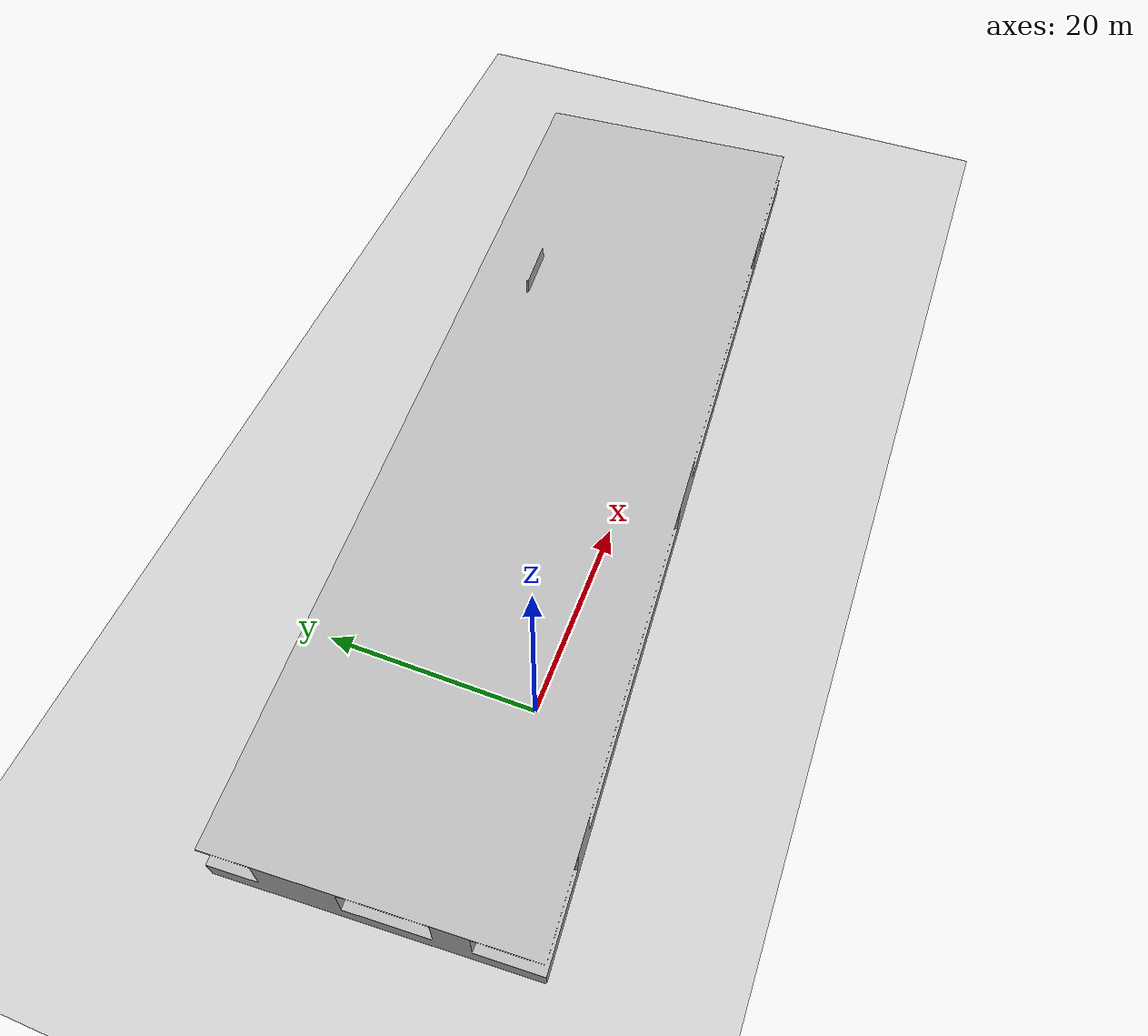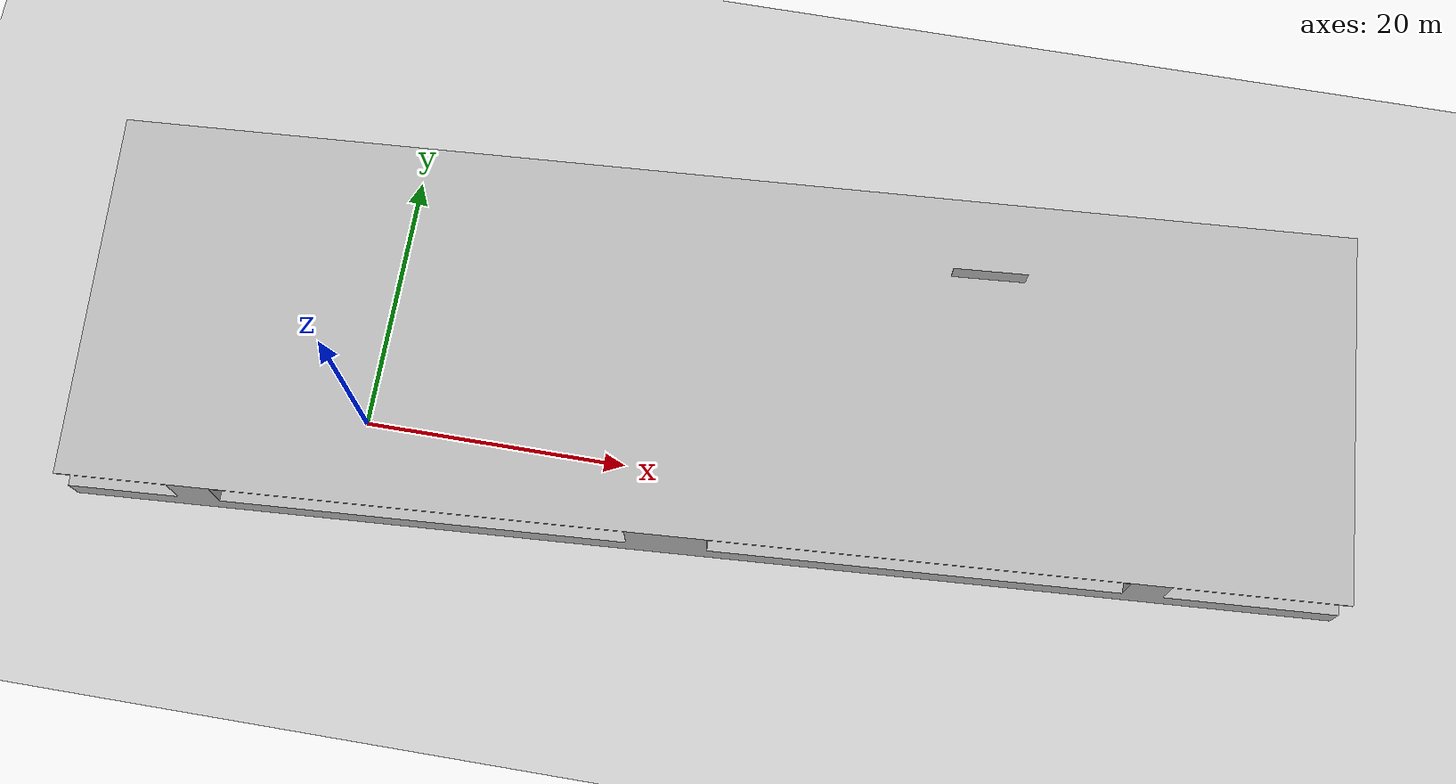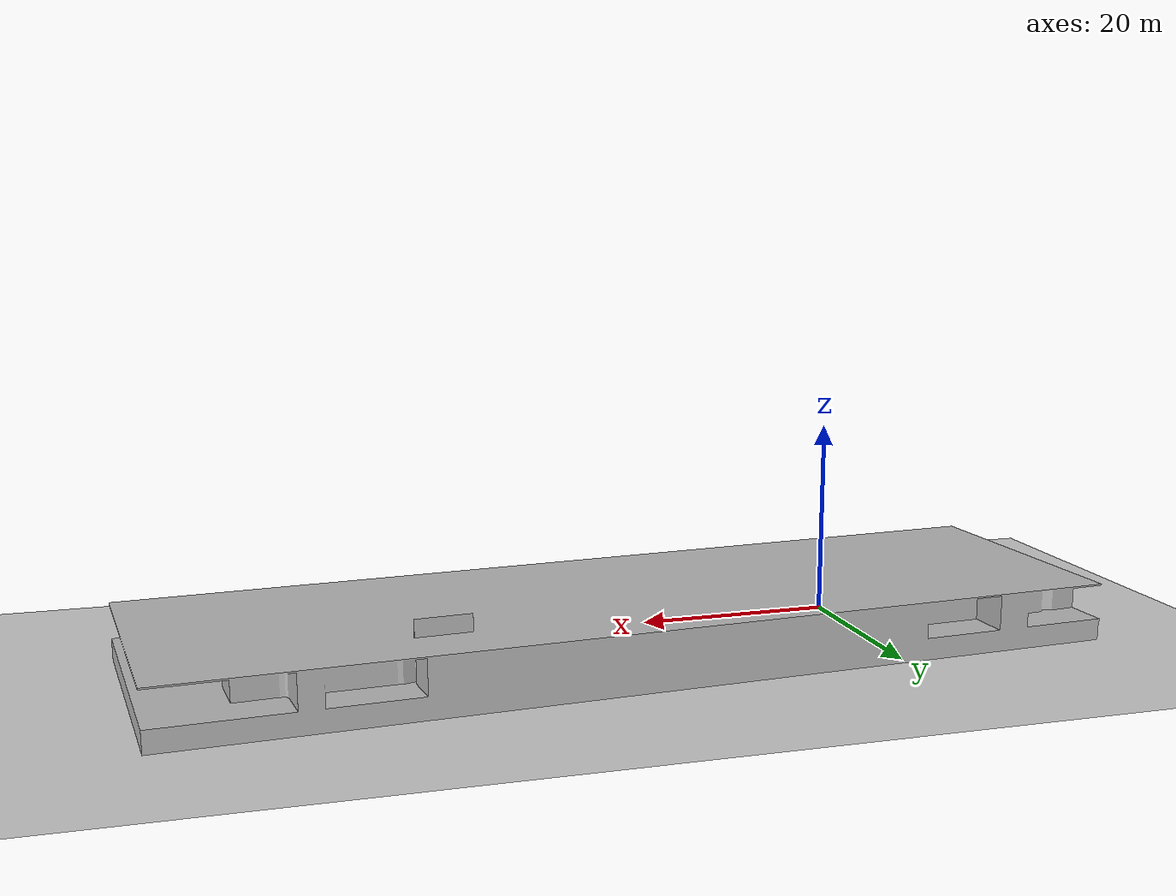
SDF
<sdf version="1.7">
 <world name="default">
  <light name="sun" type="directional">
   <pose>0 0 10 0 -0 0</pose>
   <diffuse>0.8 0.8 0.8 1</diffuse>
   <specular>0.2 0.2 0.2 1</specular>
   <attenuation>
    <range>1000</range>
    <constant>0.9</constant>
    <linear>0.01</linear>
    <quadratic>0.001</quadratic>
   </attenuation>
   <direction>-0.5 0.1 -0.9</direction>
   <spot><inner_angle>0</inner_angle><outer_angle>0</outer_angle><falloff>0</falloff></spot>
  </light>
  <model name="ground_plane">
   <static>1</static>
   <link name="link">
    <collision name="collision">
     <geometry><plane><normal>0 0 1</normal><size>100 100</size></plane></geometry>
     <surface>
      <contact><collide_bitmask>65535</collide_bitmask></contact>
      <friction><ode><mu>100</mu><mu2>100</mu2></ode></friction>
     </surface>
    </collision>
    <visual name="visual">
     <cast_shadows>0</cast_shadows>
     <geometry><plane><normal>0 0 1</normal><size>100 100</size></plane></geometry>
     <material>
      <script><uri>file://media/materials/scripts/gazebo.material</uri><name>Gazebo/Grey</name></script>
     </material>
    </visual>
   </link>
  </model>
  <gravity>0 0 -9.8</gravity>
  <magnetic_field>6e-06 2.3e-05 -4.2e-05</magnetic_field>
  <atmosphere type="adiabatic"/>
  <physics type="ode"><max_step_size>0.001</max_step_size></physics>
  <scene><ambient>0.4 0.4 0.4 1</ambient><background>0.7 0.7 0.7 1</background><shadows>1</shadows></scene>
  <spherical_coordinates>
   <surface_model>EARTH_WGS84</surface_model>
   <latitude_deg>0</latitude_deg>
   <longitude_deg>0</longitude_deg>
   <elevation>0</elevation>
   <heading_deg>0</heading_deg>
  </spherical_coordinates>
  <model name="floor">
   <link name="base_link">
    <inertial>
     <pose>25.8 5 -93.89 0 -0.025663 -0.007</pose>
     <mass>8.0192e+06</mass>
     <inertia><ixx>1</ixx><ixy>0</ixy><ixz>0</ixz><iyy>1</iyy><iyz>0</iyz><izz>1</izz></inertia>
    </inertial>
    <collision name="base_link_collision">
     <pose>25.8 5 -93.89 0 -0.025663 -0.007</pose>
     <geometry><mesh><scale>1 1 1</scale><uri>file://media/materials/scripts/base_link.STL</uri></mesh></geometry>
    </collision>
    <visual name="base_link_visual">
     <pose>25.8 5 -93.89 0 -0.025663 -0.007</pose>
     <geometry>
      <mesh><scale>1 1 1</scale><uri>file://media/materials/scripts/gazebo.material</uri></mesh>
     </geometry>
     <material>
      <script><name>ambient</name><uri>file://media/materials/scripts/gazebo.material</uri></script>
     </material>
    </visual>
    <wireframe>1</wireframe>
   </link>
   <static>1</static>
   <pose>0 0.4 0 0 -0 0</pose>
  </model>
  <light name="user_spot_light_0" type="spot">
   <pose>2.26878 0.494969 1 0 -0 0</pose>
   <diffuse>0.5 0.5 0.5 1</diffuse>
   <specular>0.1 0.1 0.1 1</specular>
   <direction>0 0 -1</direction>
   <attenuation>
    <range>20</range>
    <constant>0.5</constant>
    <linear>0.01</linear>
    <quadratic>0.001</quadratic>
   </attenuation>
   <cast_shadows>0</cast_shadows>
   <spot><inner_angle>0.6</inner_angle><outer_angle>1</outer_angle><falloff>1</falloff></spot>
  </light>
  <light name="user_spot_light_1" type="spot">
   <pose>6.06966 0.952853 1 0 -0 0</pose>
   <diffuse>0.5 0.5 0.5 1</diffuse>
   <specular>0.1 0.1 0.1 1</specular>
   <direction>0 0 -1</direction>
   <attenuation>
    <range>20</range>
    <constant>0.5</constant>
    <linear>0.01</linear>
    <quadratic>0.001</quadratic>
   </attenuation>
   <cast_shadows>0</cast_shadows>
   <spot><inner_angle>0.6</inner_angle><outer_angle>1</outer_angle><falloff>1</falloff></spot>
  </light>
  <light name="user_spot_light_2" type="spot">
   <pose>9.92737 0.896393 1 0 -0 0</pose>
   <diffuse>0.5 0.5 0.5 1</diffuse>
   <specular>0.1 0.1 0.1 1</specular>
   <direction>0 0 -1</direction>
   <attenuation>
    <range>20</range>
    <constant>0.5</constant>
    <linear>0.01</linear>
    <quadratic>0.001</quadratic>
   </attenuation>
   <cast_shadows>0</cast_shadows>
   <spot><inner_angle>0.6</inner_angle><outer_angle>1</outer_angle><falloff>1</falloff></spot>
  </light>
  <light name="user_spot_light_3" type="spot">
   <pose>17.5225 1.61371 1 0 -0 0</pose>
   <diffuse>0.5 0.5 0.5 1</diffuse>
   <specular>0.1 0.1 0.1 1</specular>
   <direction>0 0 -1</direction>
   <attenuation>
    <range>20</range>
    <constant>0.5</constant>
    <linear>0.01</linear>
    <quadratic>0.001</quadratic>
   </attenuation>
   <cast_shadows>0</cast_shadows>
   <spot><inner_angle>0.6</inner_angle><outer_angle>1</outer_angle><falloff>1</falloff></spot>
  </light>
  <light name="user_spot_light_4" type="spot">
   <pose>23.5397 1.94506 1 0 -0 0</pose>
   <diffuse>0.5 0.5 0.5 1</diffuse>
   <specular>0.1 0.1 0.1 1</specular>
   <direction>0 0 -1</direction>
   <attenuation>
    <range>20</range>
    <constant>0.5</constant>
    <linear>0.01</linear>
    <quadratic>0.001</quadratic>
   </attenuation>
   <cast_shadows>0</cast_shadows>
   <spot><inner_angle>0.6</inner_angle><outer_angle>1</outer_angle><falloff>1</falloff></spot>
  </light>
  <light name="user_spot_light_5" type="spot">
   <pose>31.451 1.9377 1 0 -0 0</pose>
   <diffuse>0.5 0.5 0.5 1</diffuse>
   <specular>0.1 0.1 0.1 1</specular>
   <direction>0 0 -1</direction>
   <attenuation>
    <range>20</range>
    <constant>0.5</constant>
    <linear>0.01</linear>
    <quadratic>0.001</quadratic>
   </attenuation>
   <cast_shadows>0</cast_shadows>
   <spot><inner_angle>0.6</inner_angle><outer_angle>1</outer_angle><falloff>1</falloff></spot>
  </light>
  <light name="user_spot_light_6" type="spot">
   <pose>37.9476 2.36788 1 0 -0 0</pose>
   <diffuse>0.5 0.5 0.5 1</diffuse>
   <specular>0.1 0.1 0.1 1</specular>
   <direction>0 0 -1</direction>
   <attenuation>
    <range>20</range>
    <constant>0.5</constant>
    <linear>0.01</linear>
    <quadratic>0.001</quadratic>
   </attenuation>
   <cast_shadows>0</cast_shadows>
   <spot><inner_angle>0.6</inner_angle><outer_angle>1</outer_angle><falloff>1</falloff></spot>
  </light>
  <light name="user_spot_light_7" type="spot">
   <pose>48.6588 3.45051 1 0 -0 0</pose>
   <diffuse>0.5 0.5 0.5 1</diffuse>
   <specular>0.1 0.1 0.1 1</specular>
   <direction>0 0 -1</direction>
   <attenuation>
    <range>20</range>
    <constant>0.5</constant>
    <linear>0.01</linear>
    <quadratic>0.001</quadratic>
   </attenuation>
   <cast_shadows>0</cast_shadows>
   <spot><inner_angle>0.6</inner_angle><outer_angle>1</outer_angle><falloff>1</falloff></spot>
  </light>
  <light name="user_spot_light_8" type="spot">
   <pose>54.5924 4.088 1 0 -0 0</pose>
   <diffuse>0.5 0.5 0.5 1</diffuse>
   <specular>0.1 0.1 0.1 1</specular>
   <direction>0 0 -1</direction>
   <attenuation>
    <range>20</range>
    <constant>0.5</constant>
    <linear>0.01</linear>
    <quadratic>0.001</quadratic>
   </attenuation>
   <cast_shadows>0</cast_shadows>
   <spot><inner_angle>0.6</inner_angle><outer_angle>1</outer_angle><falloff>1</falloff></spot>
  </light>
  <light name="user_spot_light_9" type="spot">
   <pose>60.0735 4.51787 1 0 -0 0</pose>
   <diffuse>0.5 0.5 0.5 1</diffuse>
   <specular>0.1 0.1 0.1 1</specular>
   <direction>0 0 -1</direction>
   <attenuation>
    <range>20</range>
    <constant>0.5</constant>
    <linear>0.01</linear>
    <quadratic>0.001</quadratic>
   </attenuation>
   <cast_shadows>0</cast_shadows>
   <spot><inner_angle>0.6</inner_angle><outer_angle>1</outer_angle><falloff>1</falloff></spot>
  </light>
  <light name="user_spot_light_10" type="spot">
   <pose>59.8313 11.3533 1 0 -0 0</pose>
   <diffuse>0.5 0.5 0.5 1</diffuse>
   <specular>0.1 0.1 0.1 1</specular>
   <direction>0 0 -1</direction>
   <attenuation>
    <range>20</range>
    <constant>0.5</constant>
    <linear>0.01</linear>
    <quadratic>0.001</quadratic>
   </attenuation>
   <cast_shadows>0</cast_shadows>
   <spot><inner_angle>0.6</inner_angle><outer_angle>1</outer_angle><falloff>1</falloff></spot>
  </light>
  <light name="user_spot_light_11" type="spot">
   <pose>58.5562 17.7393 1 0 -0 0</pose>
   <diffuse>0.5 0.5 0.5 1</diffuse>
   <specular>0.1 0.1 0.1 1</specular>
   <direction>0 0 -1</direction>
   <attenuation>
    <range>20</range>
    <constant>0.5</constant>
    <linear>0.01</linear>
    <quadratic>0.001</quadratic>
   </attenuation>
   <cast_shadows>0</cast_shadows>
   <spot><inner_angle>0.6</inner_angle><outer_angle>1</outer_angle><falloff>1</falloff></spot>
  </light>
  <light name="user_spot_light_12" type="spot">
   <pose>56.2401 18.6749 1 0 -0 0</pose>
   <diffuse>0.5 0.5 0.5 1</diffuse>
   <specular>0.1 0.1 0.1 1</specular>
   <direction>0 0 -1</direction>
   <attenuation>
    <range>20</range>
    <constant>0.5</constant>
    <linear>0.01</linear>
    <quadratic>0.001</quadratic>
   </attenuation>
   <cast_shadows>0</cast_shadows>
   <spot><inner_angle>0.6</inner_angle><outer_angle>1</outer_angle><falloff>1</falloff></spot>
  </light>
  <light name="user_spot_light_13" type="spot">
   <pose>52.6684 18.8695 1 0 -0 0</pose>
   <diffuse>0.5 0.5 0.5 1</diffuse>
   <specular>0.1 0.1 0.1 1</specular>
   <direction>0 0 -1</direction>
   <attenuation>
    <range>20</range>
    <constant>0.5</constant>
    <linear>0.01</linear>
    <quadratic>0.001</quadratic>
   </attenuation>
   <cast_shadows>0</cast_shadows>
   <spot><inner_angle>0.6</inner_angle><outer_angle>1</outer_angle><falloff>1</falloff></spot>
  </light>
  <light name="user_spot_light_14" type="spot">
   <pose>48.7817 19.594 1 0 -0 0</pose>
   <diffuse>0.5 0.5 0.5 1</diffuse>
   <specular>0.1 0.1 0.1 1</specular>
   <direction>0 0 -1</direction>
   <attenuation>
    <range>20</range>
    <constant>0.5</constant>
    <linear>0.01</linear>
    <quadratic>0.001</quadratic>
   </attenuation>
   <cast_shadows>0</cast_shadows>
   <spot><inner_angle>0.6</inner_angle><outer_angle>1</outer_angle><falloff>1</falloff></spot>
  </light>
  <light name="user_spot_light_15" type="spot">
   <pose>42.2244 18.1594 1 0 -0 0</pose>
   <diffuse>0.5 0.5 0.5 1</diffuse>
   <specular>0.1 0.1 0.1 1</specular>
   <direction>0 0 -1</direction>
   <attenuation>
    <range>20</range>
    <constant>0.5</constant>
    <linear>0.01</linear>
    <quadratic>0.001</quadratic>
   </attenuation>
   <cast_shadows>0</cast_shadows>
   <spot><inner_angle>0.6</inner_angle><outer_angle>1</outer_angle><falloff>1</falloff></spot>
  </light>
  <light name="user_spot_light_16" type="spot">
   <pose>37.9117 17.1743 1 0 -0 0</pose>
   <diffuse>0.5 0.5 0.5 1</diffuse>
   <specular>0.1 0.1 0.1 1</specular>
   <direction>0 0 -1</direction>
   <attenuation>
    <range>20</range>
    <constant>0.5</constant>
    <linear>0.01</linear>
    <quadratic>0.001</quadratic>
   </attenuation>
   <cast_shadows>0</cast_shadows>
   <spot><inner_angle>0.6</inner_angle><outer_angle>1</outer_angle><falloff>1</falloff></spot>
  </light>
  <light name="user_spot_light_17" type="spot">
   <pose>42.9303 16.3431 1 0 -0 0</pose>
   <diffuse>0.5 0.5 0.5 1</diffuse>
   <specular>0.1 0.1 0.1 1</specular>
   <direction>0 0 -1</direction>
   <attenuation>
    <range>20</range>
    <constant>0.5</constant>
    <linear>0.01</linear>
    <quadratic>0.001</quadratic>
   </attenuation>
   <cast_shadows>0</cast_shadows>
   <spot><inner_angle>0.6</inner_angle><outer_angle>1</outer_angle><falloff>1</falloff></spot>
  </light>
  <light name="user_spot_light_18" type="spot">
   <pose>39.2625 16.1227 1 0 -0 0</pose>
   <diffuse>0.5 0.5 0.5 1</diffuse>
   <specular>0.1 0.1 0.1 1</specular>
   <direction>0 0 -1</direction>
   <attenuation>
    <range>20</range>
    <constant>0.5</constant>
    <linear>0.01</linear>
    <quadratic>0.001</quadratic>
   </attenuation>
   <cast_shadows>0</cast_shadows>
   <spot><inner_angle>0.6</inner_angle><outer_angle>1</outer_angle><falloff>1</falloff></spot>
  </light>
  <light name="user_spot_light_19" type="spot">
   <pose>34.2128 15.4342 1 0 -0 0</pose>
   <diffuse>0.5 0.5 0.5 1</diffuse>
   <specular>0.1 0.1 0.1 1</specular>
   <direction>0 0 -1</direction>
   <attenuation>
    <range>20</range>
    <constant>0.5</constant>
    <linear>0.01</linear>
    <quadratic>0.001</quadratic>
   </attenuation>
   <cast_shadows>0</cast_shadows>
   <spot><inner_angle>0.6</inner_angle><outer_angle>1</outer_angle><falloff>1</falloff></spot>
  </light>
  <light name="user_spot_light_20" type="spot">
   <pose>30.7959 13.9493 1 0 -0 0</pose>
   <diffuse>0.5 0.5 0.5 1</diffuse>
   <specular>0.1 0.1 0.1 1</specular>
   <direction>0 0 -1</direction>
   <attenuation>
    <range>20</range>
    <constant>0.5</constant>
    <linear>0.01</linear>
    <quadratic>0.001</quadratic>
   </attenuation>
   <cast_shadows>0</cast_shadows>
   <spot><inner_angle>0.6</inner_angle><outer_angle>1</outer_angle><falloff>1</falloff></spot>
  </light>
  <light name="user_spot_light_21" type="spot">
   <pose>27.3676 12.014 1 0 -0 0</pose>
   <diffuse>0.5 0.5 0.5 1</diffuse>
   <specular>0.1 0.1 0.1 1</specular>
   <direction>0 0 -1</direction>
   <attenuation>
    <range>20</range>
    <constant>0.5</constant>
    <linear>0.01</linear>
    <quadratic>0.001</quadratic>
   </attenuation>
   <cast_shadows>0</cast_shadows>
   <spot><inner_angle>0.6</inner_angle><outer_angle>1</outer_angle><falloff>1</falloff></spot>
  </light>
  <light name="user_spot_light_22" type="spot">
   <pose>24.7742 11.8127 1 0 -0 0</pose>
   <diffuse>0.5 0.5 0.5 1</diffuse>
   <specular>0.1 0.1 0.1 1</specular>
   <direction>0 0 -1</direction>
   <attenuation>
    <range>20</range>
    <constant>0.5</constant>
    <linear>0.01</linear>
    <quadratic>0.001</quadratic>
   </attenuation>
   <cast_shadows>0</cast_shadows>
   <spot><inner_angle>0.6</inner_angle><outer_angle>1</outer_angle><falloff>1</falloff></spot>
  </light>
  <light name="user_spot_light_23" type="spot">
   <pose>23.1304 10.1919 1 0 -0 0</pose>
   <diffuse>0.5 0.5 0.5 1</diffuse>
   <specular>0.1 0.1 0.1 1</specular>
   <direction>0 0 -1</direction>
   <attenuation>
    <range>20</range>
    <constant>0.5</constant>
    <linear>0.01</linear>
    <quadratic>0.001</quadratic>
   </attenuation>
   <cast_shadows>0</cast_shadows>
   <spot><inner_angle>0.6</inner_angle><outer_angle>1</outer_angle><falloff>1</falloff></spot>
  </light>
  <light name="user_spot_light_24" type="spot">
   <pose>25.7819 17.5585 1 0 -0 0</pose>
   <diffuse>0.5 0.5 0.5 1</diffuse>
   <specular>0.1 0.1 0.1 1</specular>
   <direction>0 0 -1</direction>
   <attenuation>
    <range>20</range>
    <constant>0.5</constant>
    <linear>0.01</linear>
    <quadratic>0.001</quadratic>
   </attenuation>
   <cast_shadows>0</cast_shadows>
   <spot><inner_angle>0.6</inner_angle><outer_angle>1</outer_angle><falloff>1</falloff></spot>
  </light>
  <light name="user_spot_light_25" type="spot">
   <pose>21.4658 10.8806 1 0 -0 0</pose>
   <diffuse>0.5 0.5 0.5 1</diffuse>
   <specular>0.1 0.1 0.1 1</specular>
   <direction>0 0 -1</direction>
   <attenuation>
    <range>20</range>
    <constant>0.5</constant>
    <linear>0.01</linear>
    <quadratic>0.001</quadratic>
   </attenuation>
   <cast_shadows>0</cast_shadows>
   <spot><inner_angle>0.6</inner_angle><outer_angle>1</outer_angle><falloff>1</falloff></spot>
  </light>
  <light name="user_spot_light_26" type="spot">
   <pose>15.4345 8.79324 1 0 -0 0</pose>
   <diffuse>0.5 0.5 0.5 1</diffuse>
   <specular>0.1 0.1 0.1 1</specular>
   <direction>0 0 -1</direction>
   <attenuation>
    <range>20</range>
    <constant>0.5</constant>
    <linear>0.01</linear>
    <quadratic>0.001</quadratic>
   </attenuation>
   <cast_shadows>0</cast_shadows>
   <spot><inner_angle>0.6</inner_angle><outer_angle>1</outer_angle><falloff>1</falloff></spot>
  </light>
  <light name="user_spot_light_27" type="spot">
   <pose>11.0861 9.77459 1 0 -0 0</pose>
   <diffuse>0.5 0.5 0.5 1</diffuse>
   <specular>0.1 0.1 0.1 1</specular>
   <direction>0 0 -1</direction>
   <attenuation>
    <range>20</range>
    <constant>0.5</constant>
    <linear>0.01</linear>
    <quadratic>0.001</quadratic>
   </attenuation>
   <cast_shadows>0</cast_shadows>
   <spot><inner_angle>0.6</inner_angle><outer_angle>1</outer_angle><falloff>1</falloff></spot>
  </light>
  <light name="user_spot_light_28" type="spot">
   <pose>7.23998 14.9611 1 0 -0 0</pose>
   <diffuse>0.5 0.5 0.5 1</diffuse>
   <specular>0.1 0.1 0.1 1</specular>
   <direction>0 0 -1</direction>
   <attenuation>
    <range>20</range>
    <constant>0.5</constant>
    <linear>0.01</linear>
    <quadratic>0.001</quadratic>
   </attenuation>
   <cast_shadows>0</cast_shadows>
   <spot><inner_angle>0.6</inner_angle><outer_angle>1</outer_angle><falloff>1</falloff></spot>
  </light>
  <light name="user_spot_light_29" type="spot">
   <pose>3.45408 13.5441 1 0 -0 0</pose>
   <diffuse>0.5 0.5 0.5 1</diffuse>
   <specular>0.1 0.1 0.1 1</specular>
   <direction>0 0 -1</direction>
   <attenuation>
    <range>20</range>
    <constant>0.5</constant>
    <linear>0.01</linear>
    <quadratic>0.001</quadratic>
   </attenuation>
   <cast_shadows>0</cast_shadows>
   <spot><inner_angle>0.6</inner_angle><outer_angle>1</outer_angle><falloff>1</falloff></spot>
  </light>
  <light name="user_spot_light_30" type="spot">
   <pose>1.13144 11.0651 1 0 -0 0</pose>
   <diffuse>0.5 0.5 0.5 1</diffuse>
   <specular>0.1 0.1 0.1 1</specular>
   <direction>0 0 -1</direction>
   <attenuation>
    <range>20</range>
    <constant>0.5</constant>
    <linear>0.01</linear>
    <quadratic>0.001</quadratic>
   </attenuation>
   <cast_shadows>0</cast_shadows>
   <spot><inner_angle>0.6</inner_angle><outer_angle>1</outer_angle><falloff>1</falloff></spot>
  </light>
 </world>
</sdf>
